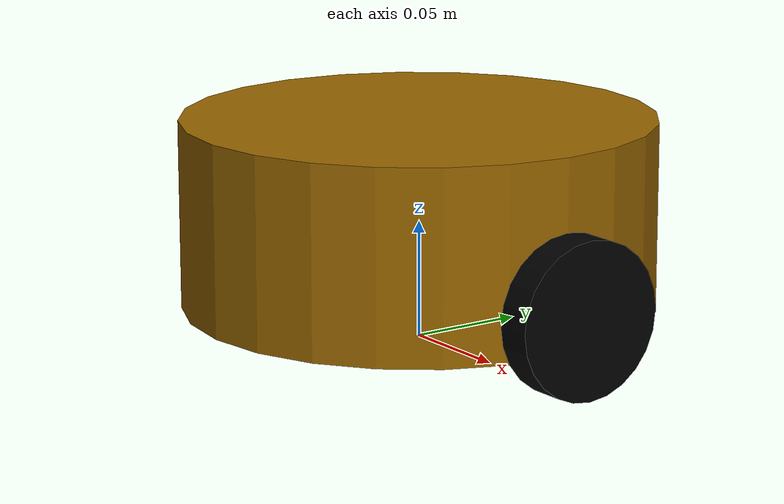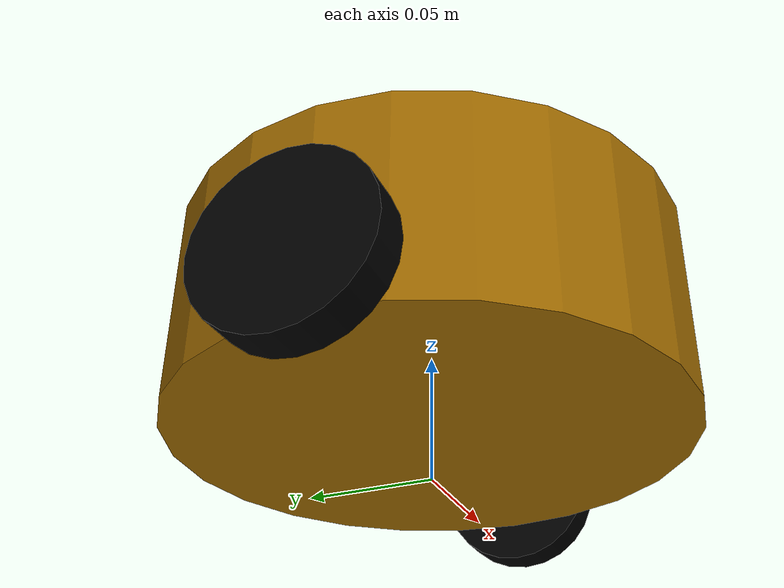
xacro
<robot name="jixie" xmlns:xacro="http://wiki.ros.org/xacro">
    <xacro:property name="base_footprint_length" value="0.001" />
    <xacro:property name="base_footprint_wide" value="0.001" />
    <xacro:property name="base_footprint_high" value="0.001" />
    <xacro:property name="dipan_radius" value="0.1" />
    <xacro:property name="dipan_length" value="0.08" />
    <xacro:property name="qudonglun_radius" value="0.0325" />
    <xacro:property name="qudonglun_length" value="0.015" />
    <xacro:property name="PI" value="3.1415927" />
    <xacro:property name="dipan_length" value="0.08" />
    <xacro:property name="lidi_space" value="0.015" />

    <material name="black">
        <color rgba="0.0 0.0 0.0 1.0" />
    </material>
    <material name="orange">
        <color rgba="0.6 0.4 0.0 1.0" />
    </material>
    <material name="red">
        <color rgba="1 0 0 1.0" />
    </material>

    <xacro:macro name="base_fun" params="link_name_1">
        <link name="${link_name_1}">
            <visual>
                <geometry>
                    <box size="${base_footprint_length} ${base_footprint_wide} ${base_footprint_high}" />
                </geometry>
            </visual>
        </link>
    </xacro:macro>
    <xacro:base_fun link_name_1="base_footprint" />

    <xacro:macro name="dipan_fun" params="link_name_2">
        <link name="${link_name_2}">
            <visual>
                <geometry>
                    <cylinder radius="${dipan_radius}" length="${dipan_length}" />
                </geometry>
                <origin xyz="0 0 0" rpy="0 0 0" />
                <material name="orange" />
            </visual>
        </link>
        <joint name="base_dipan" type="fixed">
            <parent link="base_footprint" />
            <child link="${link_name_2}" />
            <origin xyz="0 0 ${lidi_space+dipan_length/2}" rpy="0 0 0" />
            <axis xyz="0 0 0" />
        </joint>
    </xacro:macro>
    <xacro:dipan_fun link_name_2="dipan" />

    <xacro:macro name="qudonglun_fun" params="side symbol">
        <link name="qudonglun_${side}">
            <visual>
                <geometry>
                    <cylinder radius="${qudonglun_radius}" length="${qudonglun_length}" />
                </geometry>
                <origin xyz="0 0 0" rpy="0 1.57 0" />
                <material name="black" />
            </visual>
        </link>
        <joint name="dipan_qudonglun_${side}" type="continuous">
            <parent link="dipan" />
            <child link="qudonglun_${side}" />
            <origin xyz="${symbol*(dipan_radius+qudonglun_length/2)} 0 ${-(lidi_space+dipan_length/2-qudonglun_radius)}" rpy="0 0 0" />
            <axis xyz="1 0 0" />
        </joint>
    </xacro:macro>
    <xacro:qudonglun_fun side="left" symbol="-1" />
    <xacro:qudonglun_fun side="right" symbol="+1" />
</robot>
